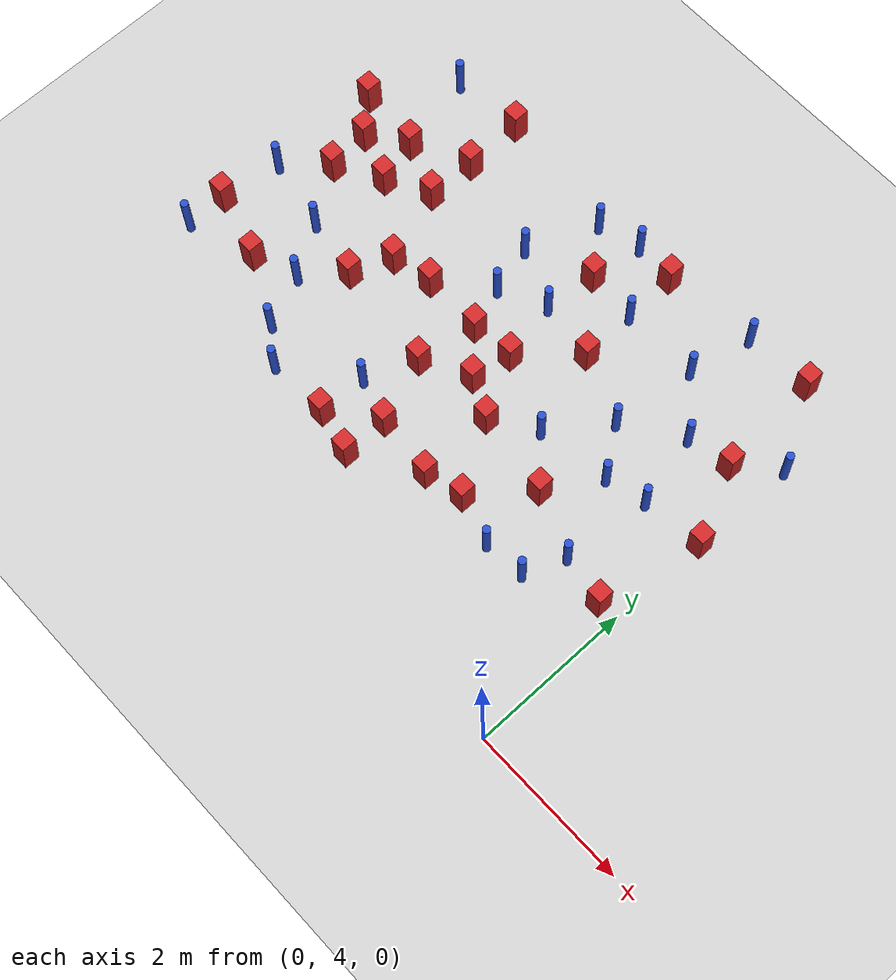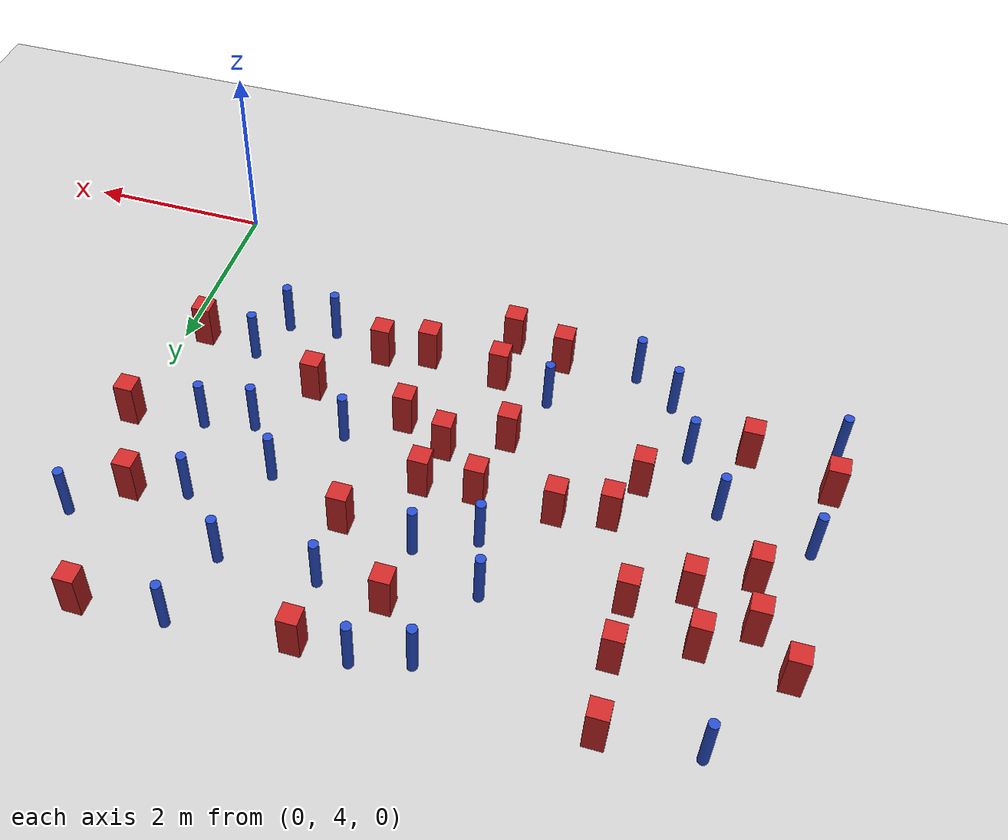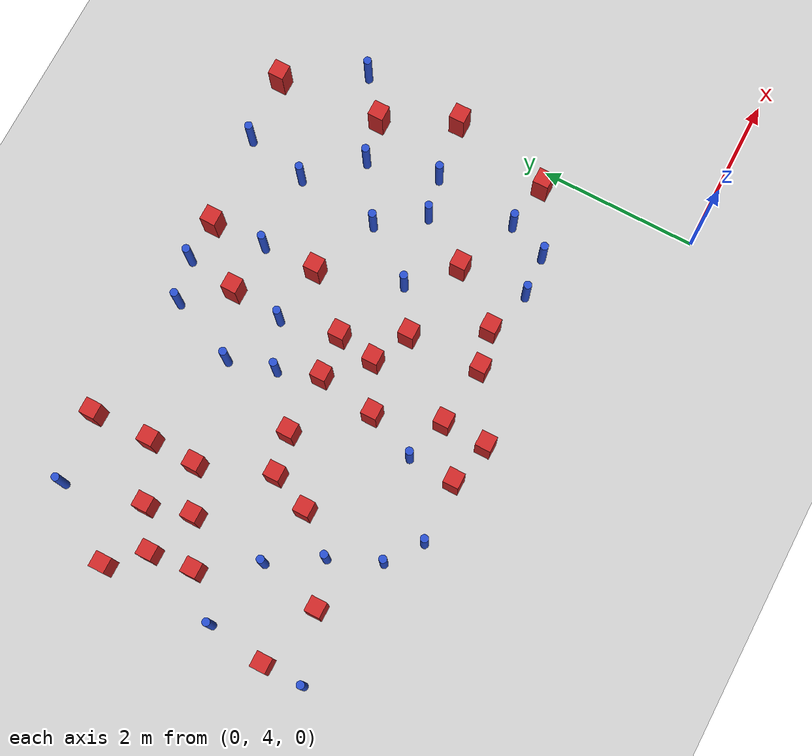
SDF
<sdf version="1.6">
 <world name="default">
  <model name="ground_plane">
   <static>1</static>
   <link name="link">
    <collision name="collision">
     <geometry><plane><normal>0 0 1</normal><size>100 100</size></plane></geometry>
     <surface><friction><ode><mu>100</mu><mu2>50</mu2></ode></friction></surface>
    </collision>
    <visual name="visual">
     <cast_shadows>0</cast_shadows>
     <geometry><plane><normal>0 0 1</normal><size>100 100</size></plane></geometry>
     <material>
      <ambient>1.0 1.0 1.0 1.0</ambient>
      <diffuse>0.8 0.8 0.8 1.0</diffuse>
      <specular>0.01 0.01 0.01 1.000000</specular>
     </material>
    </visual>
   </link>
  </model>
  <model name="pole_obstacle1">
   <static>true</static>
   <pose>-2.13433146588 6.8682397058 -9.47619616065e-06 5.49618799738e-07 2.3631041406e-07 -1.55090534801e-07</pose>
   <link name="link">
    <pose>0 0 0.3 0 -0 0</pose>
    <inertial>
     <mass>1</mass>
     <inertia><ixx>0.145833</ixx><ixy>0</ixy><ixz>0</ixz><iyy>0.145833</iyy><iyz>0</iyz><izz>0.125</izz></inertia>
    </inertial>
    <collision name="collision">
     <geometry><cylinder><radius>0.05</radius><length>.6</length></cylinder></geometry>
    </collision>
    <visual name="visual">
     <geometry><cylinder><radius>0.05</radius><length>.6</length></cylinder></geometry>
     <material>
      <script><name>Gazebo/Blue</name><uri>file://media/materials/scripts/gazebo.material</uri></script>
     </material>
    </visual>
   </link>
  </model>
  <model name="pole_obstacle4">
   <static>true</static>
   <pose>-3.21196088458 8.00425700751 -9.47619616065e-06 5.49618799737e-07 2.3631041406e-07 -1.55090534799e-07</pose>
   <link name="link">
    <pose>0 0 0.3 0 -0 0</pose>
    <inertial>
     <mass>1</mass>
     <inertia><ixx>0.145833</ixx><ixy>0</ixy><ixz>0</ixz><iyy>0.145833</iyy><iyz>0</iyz><izz>0.125</izz></inertia>
    </inertial>
    <collision name="collision">
     <geometry><cylinder><radius>0.05</radius><length>.6</length></cylinder></geometry>
    </collision>
    <visual name="visual">
     <geometry><cylinder><radius>0.05</radius><length>.6</length></cylinder></geometry>
     <material>
      <script><name>Gazebo/Blue</name><uri>file://media/materials/scripts/gazebo.material</uri></script>
     </material>
    </visual>
   </link>
  </model>
  <model name="square_post_obstacle3">
   <static>true</static>
   <pose>0.0373794791806 7.22785850671 -6.11067671241e-07 -5.50515727128e-06 -8.79689657224e-07 2.37013304536e-05</pose>
   <link name="link">
    <pose>0 0 0.25 0 -0 0</pose>
    <inertial>
     <mass>100</mass>
     <inertia>
      <ixx>0.166667</ixx>
      <ixy>0</ixy>
      <ixz>0</ixz>
      <iyy>0.166667</iyy>
      <iyz>0</iyz>
      <izz>0.166667</izz>
     </inertia>
    </inertial>
    <collision name="collision"><geometry><box><size>.2 .2 .5</size></box></geometry></collision>
    <visual name="visual">
     <geometry><box><size>.2 .2 .5</size></box></geometry>
     <material>
      <script><name>Gazebo/Red</name><uri>file://media/materials/scripts/gazebo.material</uri></script>
     </material>
    </visual>
   </link>
  </model>
  <model name="pole_obstacle9">
   <static>true</static>
   <pose>-1.62684005314 7.56220310109 -9.47619616065e-06 5.49618799737e-07 2.36310414061e-07 -1.550905348e-07</pose>
   <link name="link">
    <pose>0 0 0.3 0 -0 0</pose>
    <inertial>
     <mass>1</mass>
     <inertia><ixx>0.145833</ixx><ixy>0</ixy><ixz>0</ixz><iyy>0.145833</iyy><iyz>0</iyz><izz>0.125</izz></inertia>
    </inertial>
    <collision name="collision">
     <geometry><cylinder><radius>0.05</radius><length>.6</length></cylinder></geometry>
    </collision>
    <visual name="visual">
     <geometry><cylinder><radius>0.05</radius><length>.6</length></cylinder></geometry>
     <material>
      <script><name>Gazebo/Blue</name><uri>file://media/materials/scripts/gazebo.material</uri></script>
     </material>
    </visual>
   </link>
  </model>
  <model name="square_post_obstacle8">
   <static>true</static>
   <pose>-5.1087759929 6.61862478687 -6.11067671241e-07 -5.50515727128e-06 -8.79689657224e-07 2.37013304536e-05</pose>
   <link name="link">
    <pose>0 0 0.25 0 -0 0</pose>
    <inertial>
     <mass>100</mass>
     <inertia>
      <ixx>0.166667</ixx>
      <ixy>0</ixy>
      <ixz>0</ixz>
      <iyy>0.166667</iyy>
      <iyz>0</iyz>
      <izz>0.166667</izz>
     </inertia>
    </inertial>
    <collision name="collision"><geometry><box><size>.2 .2 .5</size></box></geometry></collision>
    <visual name="visual">
     <geometry><box><size>.2 .2 .5</size></box></geometry>
     <material>
      <script><name>Gazebo/Red</name><uri>file://media/materials/scripts/gazebo.material</uri></script>
     </material>
    </visual>
   </link>
  </model>
  <model name="pole_obstacle28">
   <static>true</static>
   <pose>-1.50425184578 8.63080577014 -9.47619616065e-06 5.49618799737e-07 2.36310414046e-07 -1.55090534809e-07</pose>
   <link name="link">
    <pose>0 0 0.3 0 -0 0</pose>
    <inertial>
     <mass>1</mass>
     <inertia><ixx>0.145833</ixx><ixy>0</ixy><ixz>0</ixz><iyy>0.145833</iyy><iyz>0</iyz><izz>0.125</izz></inertia>
    </inertial>
    <collision name="collision">
     <geometry><cylinder><radius>0.05</radius><length>.6</length></cylinder></geometry>
    </collision>
    <visual name="visual">
     <geometry><cylinder><radius>0.05</radius><length>.6</length></cylinder></geometry>
     <material>
      <script><name>Gazebo/Blue</name><uri>file://media/materials/scripts/gazebo.material</uri></script>
     </material>
    </visual>
   </link>
  </model>
  <model name="pole_obstacle30">
   <static>true</static>
   <pose>-1.22058557378 7.00821244844 -9.47619616065e-06 5.49618799737e-07 2.36310414061e-07 -1.550905348e-07</pose>
   <link name="link">
    <pose>0 0 0.3 0 -0 0</pose>
    <inertial>
     <mass>1</mass>
     <inertia><ixx>0.145833</ixx><ixy>0</ixy><ixz>0</ixz><iyy>0.145833</iyy><iyz>0</iyz><izz>0.125</izz></inertia>
    </inertial>
    <collision name="collision">
     <geometry><cylinder><radius>0.05</radius><length>.6</length></cylinder></geometry>
    </collision>
    <visual name="visual">
     <geometry><cylinder><radius>0.05</radius><length>.6</length></cylinder></geometry>
     <material>
      <script><name>Gazebo/Blue</name><uri>file://media/materials/scripts/gazebo.material</uri></script>
     </material>
    </visual>
   </link>
  </model>
  <model name="square_post_obstacle25">
   <static>true</static>
   <pose>-3.05869939049 7.25814475524 -6.11067671241e-07 -5.50515727128e-06 -8.79689657224e-07 2.37013304536e-05</pose>
   <link name="link">
    <pose>0 0 0.25 0 -0 0</pose>
    <inertial>
     <mass>100</mass>
     <inertia>
      <ixx>0.166667</ixx>
      <ixy>0</ixy>
      <ixz>0</ixz>
      <iyy>0.166667</iyy>
      <iyz>0</iyz>
      <izz>0.166667</izz>
     </inertia>
    </inertial>
    <collision name="collision"><geometry><box><size>.2 .2 .5</size></box></geometry></collision>
    <visual name="visual">
     <geometry><box><size>.2 .2 .5</size></box></geometry>
     <material>
      <script><name>Gazebo/Red</name><uri>file://media/materials/scripts/gazebo.material</uri></script>
     </material>
    </visual>
   </link>
  </model>
  <model name="square_post_obstacle31">
   <static>true</static>
   <pose>-2.15792530512 5.68523999802 -6.11067671241e-07 -5.50515727128e-06 -8.79689657224e-07 2.37013304536e-05</pose>
   <link name="link">
    <pose>0 0 0.25 0 -0 0</pose>
    <inertial>
     <mass>100</mass>
     <inertia>
      <ixx>0.166667</ixx>
      <ixy>0</ixy>
      <ixz>0</ixz>
      <iyy>0.166667</iyy>
      <iyz>0</iyz>
      <izz>0.166667</izz>
     </inertia>
    </inertial>
    <collision name="collision"><geometry><box><size>.2 .2 .5</size></box></geometry></collision>
    <visual name="visual">
     <geometry><box><size>.2 .2 .5</size></box></geometry>
     <material>
      <script><name>Gazebo/Red</name><uri>file://media/materials/scripts/gazebo.material</uri></script>
     </material>
    </visual>
   </link>
  </model>
  <model name="pole_obstacle45">
   <static>true</static>
   <pose>-3.58425441482 9.18958862862 -9.47619616065e-06 5.49618799738e-07 2.36310414059e-07 -1.55090534802e-07</pose>
   <link name="link">
    <pose>0 0 0.3 0 -0 0</pose>
    <inertial>
     <mass>1</mass>
     <inertia><ixx>0.145833</ixx><ixy>0</ixy><ixz>0</ixz><iyy>0.145833</iyy><iyz>0</iyz><izz>0.125</izz></inertia>
    </inertial>
    <collision name="collision">
     <geometry><cylinder><radius>0.05</radius><length>.6</length></cylinder></geometry>
    </collision>
    <visual name="visual">
     <geometry><cylinder><radius>0.05</radius><length>.6</length></cylinder></geometry>
     <material>
      <script><name>Gazebo/Blue</name><uri>file://media/materials/scripts/gazebo.material</uri></script>
     </material>
    </visual>
   </link>
  </model>
  <model name="pole_obstacle47">
   <static>true</static>
   <pose>-1.03991508712 5.5405683807 -9.47619616065e-06 5.49618799737e-07 2.36310414062e-07 -1.55090534799e-07</pose>
   <link name="link">
    <pose>0 0 0.3 0 -0 0</pose>
    <inertial>
     <mass>1</mass>
     <inertia><ixx>0.145833</ixx><ixy>0</ixy><ixz>0</ixz><iyy>0.145833</iyy><iyz>0</iyz><izz>0.125</izz></inertia>
    </inertial>
    <collision name="collision">
     <geometry><cylinder><radius>0.05</radius><length>.6</length></cylinder></geometry>
    </collision>
    <visual name="visual">
     <geometry><cylinder><radius>0.05</radius><length>.6</length></cylinder></geometry>
     <material>
      <script><name>Gazebo/Blue</name><uri>file://media/materials/scripts/gazebo.material</uri></script>
     </material>
    </visual>
   </link>
  </model>
  <model name="square_post_obstacle38">
   <static>true</static>
   <pose>-6.75622918908 8.38984562279 -6.11067671241e-07 -5.50515727128e-06 -8.79689657224e-07 2.37013304536e-05</pose>
   <link name="link">
    <pose>0 0 0.25 0 -0 0</pose>
    <inertial>
     <mass>100</mass>
     <inertia>
      <ixx>0.166667</ixx>
      <ixy>0</ixy>
      <ixz>0</ixz>
      <iyy>0.166667</iyy>
      <iyz>0</iyz>
      <izz>0.166667</izz>
     </inertia>
    </inertial>
    <collision name="collision"><geometry><box><size>.2 .2 .5</size></box></geometry></collision>
    <visual name="visual">
     <geometry><box><size>.2 .2 .5</size></box></geometry>
     <material>
      <script><name>Gazebo/Red</name><uri>file://media/materials/scripts/gazebo.material</uri></script>
     </material>
    </visual>
   </link>
  </model>
  <model name="pole_obstacle52">
   <static>true</static>
   <pose>-5.49921110554 6.13548328127 -9.47619616065e-06 5.49618799737e-07 2.36310414037e-07 -1.55090534814e-07</pose>
   <link name="link">
    <pose>0 0 0.3 0 -0 0</pose>
    <inertial>
     <mass>1</mass>
     <inertia><ixx>0.145833</ixx><ixy>0</ixy><ixz>0</ixz><iyy>0.145833</iyy><iyz>0</iyz><izz>0.125</izz></inertia>
    </inertial>
    <collision name="collision">
     <geometry><cylinder><radius>0.05</radius><length>.6</length></cylinder></geometry>
    </collision>
    <visual name="visual">
     <geometry><cylinder><radius>0.05</radius><length>.6</length></cylinder></geometry>
     <material>
      <script><name>Gazebo/Blue</name><uri>file://media/materials/scripts/gazebo.material</uri></script>
     </material>
    </visual>
   </link>
  </model>
  <model name="square_post_obstacle40">
   <static>true</static>
   <pose>-5.22100148265 8.64073795015 -6.11067671241e-07 -5.50515727128e-06 -8.79689657224e-07 2.37013304536e-05</pose>
   <link name="link">
    <pose>0 0 0.25 0 -0 0</pose>
    <inertial>
     <mass>100</mass>
     <inertia>
      <ixx>0.166667</ixx>
      <ixy>0</ixy>
      <ixz>0</ixz>
      <iyy>0.166667</iyy>
      <iyz>0</iyz>
      <izz>0.166667</izz>
     </inertia>
    </inertial>
    <collision name="collision"><geometry><box><size>.2 .2 .5</size></box></geometry></collision>
    <visual name="visual">
     <geometry><box><size>.2 .2 .5</size></box></geometry>
     <material>
      <script><name>Gazebo/Red</name><uri>file://media/materials/scripts/gazebo.material</uri></script>
     </material>
    </visual>
   </link>
  </model>
  <model name="square_post_obstacle57">
   <static>true</static>
   <pose>-6.38571675493 7.98273906625 -6.11067671241e-07 -5.50515727128e-06 -8.79689657224e-07 2.37013304536e-05</pose>
   <link name="link">
    <pose>0 0 0.25 0 -0 0</pose>
    <inertial>
     <mass>100</mass>
     <inertia>
      <ixx>0.166667</ixx>
      <ixy>0</ixy>
      <ixz>0</ixz>
      <iyy>0.166667</iyy>
      <iyz>0</iyz>
      <izz>0.166667</izz>
     </inertia>
    </inertial>
    <collision name="collision"><geometry><box><size>.2 .2 .5</size></box></geometry></collision>
    <visual name="visual">
     <geometry><box><size>.2 .2 .5</size></box></geometry>
     <material>
      <script><name>Gazebo/Red</name><uri>file://media/materials/scripts/gazebo.material</uri></script>
     </material>
    </visual>
   </link>
  </model>
  <model name="square_post_obstacle60">
   <static>true</static>
   <pose>-4.0104236069 5.22577910065 -6.11067671241e-07 -5.50515727128e-06 -8.79689657224e-07 2.37013304536e-05</pose>
   <link name="link">
    <pose>0 0 0.25 0 -0 0</pose>
    <inertial>
     <mass>100</mass>
     <inertia>
      <ixx>0.166667</ixx>
      <ixy>0</ixy>
      <ixz>0</ixz>
      <iyy>0.166667</iyy>
      <iyz>0</iyz>
      <izz>0.166667</izz>
     </inertia>
    </inertial>
    <collision name="collision"><geometry><box><size>.2 .2 .5</size></box></geometry></collision>
    <visual name="visual">
     <geometry><box><size>.2 .2 .5</size></box></geometry>
     <material>
      <script><name>Gazebo/Red</name><uri>file://media/materials/scripts/gazebo.material</uri></script>
     </material>
    </visual>
   </link>
  </model>
  <model name="pole_obstacle77">
   <static>true</static>
   <pose>-1.564379954 5.50133856745 -9.47619616065e-06 5.49618799737e-07 2.36310414061e-07 -1.550905348e-07</pose>
   <link name="link">
    <pose>0 0 0.3 0 -0 0</pose>
    <inertial>
     <mass>1</mass>
     <inertia><ixx>0.145833</ixx><ixy>0</ixy><ixz>0</ixz><iyy>0.145833</iyy><iyz>0</iyz><izz>0.125</izz></inertia>
    </inertial>
    <collision name="collision">
     <geometry><cylinder><radius>0.05</radius><length>.6</length></cylinder></geometry>
    </collision>
    <visual name="visual">
     <geometry><cylinder><radius>0.05</radius><length>.6</length></cylinder></geometry>
     <material>
      <script><name>Gazebo/Blue</name><uri>file://media/materials/scripts/gazebo.material</uri></script>
     </material>
    </visual>
   </link>
  </model>
  <model name="square_post_obstacle72">
   <static>true</static>
   <pose>-0.391083807644 8.13131009959 -6.11067671241e-07 -5.50515727128e-06 -8.79689657224e-07 2.37013304536e-05</pose>
   <link name="link">
    <pose>0 0 0.25 0 -0 0</pose>
    <inertial>
     <mass>100</mass>
     <inertia>
      <ixx>0.166667</ixx>
      <ixy>0</ixy>
      <ixz>0</ixz>
      <iyy>0.166667</iyy>
      <iyz>0</iyz>
      <izz>0.166667</izz>
     </inertia>
    </inertial>
    <collision name="collision"><geometry><box><size>.2 .2 .5</size></box></geometry></collision>
    <visual name="visual">
     <geometry><box><size>.2 .2 .5</size></box></geometry>
     <material>
      <script><name>Gazebo/Red</name><uri>file://media/materials/scripts/gazebo.material</uri></script>
     </material>
    </visual>
   </link>
  </model>
  <model name="pole_obstacle83">
   <static>true</static>
   <pose>-0.710696135449 7.12560566712 -9.47619616065e-06 5.49618799737e-07 2.36310414065e-07 -1.55090534796e-07</pose>
   <link name="link">
    <pose>0 0 0.3 0 -0 0</pose>
    <inertial>
     <mass>1</mass>
     <inertia><ixx>0.145833</ixx><ixy>0</ixy><ixz>0</ixz><iyy>0.145833</iyy><iyz>0</iyz><izz>0.125</izz></inertia>
    </inertial>
    <collision name="collision">
     <geometry><cylinder><radius>0.05</radius><length>.6</length></cylinder></geometry>
    </collision>
    <visual name="visual">
     <geometry><cylinder><radius>0.05</radius><length>.6</length></cylinder></geometry>
     <material>
      <script><name>Gazebo/Blue</name><uri>file://media/materials/scripts/gazebo.material</uri></script>
     </material>
    </visual>
   </link>
  </model>
  <model name="square_post_obstacle81">
   <static>true</static>
   <pose>-0.239916706573 5.94124531862 -6.11067671241e-07 -5.50515727128e-06 -8.79689657224e-07 2.37013304536e-05</pose>
   <link name="link">
    <pose>0 0 0.25 0 -0 0</pose>
    <inertial>
     <mass>100</mass>
     <inertia>
      <ixx>0.166667</ixx>
      <ixy>0</ixy>
      <ixz>0</ixz>
      <iyy>0.166667</iyy>
      <iyz>0</iyz>
      <izz>0.166667</izz>
     </inertia>
    </inertial>
    <collision name="collision"><geometry><box><size>.2 .2 .5</size></box></geometry></collision>
    <visual name="visual">
     <geometry><box><size>.2 .2 .5</size></box></geometry>
     <material>
      <script><name>Gazebo/Red</name><uri>file://media/materials/scripts/gazebo.material</uri></script>
     </material>
    </visual>
   </link>
  </model>
  <model name="square_post_obstacle82">
   <static>true</static>
   <pose>-2.46903252092 7.90923069919 -6.11067671241e-07 -5.50515727128e-06 -8.79689657224e-07 2.37013304536e-05</pose>
   <link name="link">
    <pose>0 0 0.25 0 -0 0</pose>
    <inertial>
     <mass>100</mass>
     <inertia>
      <ixx>0.166667</ixx>
      <ixy>0</ixy>
      <ixz>0</ixz>
      <iyy>0.166667</iyy>
      <iyz>0</iyz>
      <izz>0.166667</izz>
     </inertia>
    </inertial>
    <collision name="collision"><geometry><box><size>.2 .2 .5</size></box></geometry></collision>
    <visual name="visual">
     <geometry><box><size>.2 .2 .5</size></box></geometry>
     <material>
      <script><name>Gazebo/Red</name><uri>file://media/materials/scripts/gazebo.material</uri></script>
     </material>
    </visual>
   </link>
  </model>
  <model name="square_post_obstacle84">
   <static>true</static>
   <pose>-3.73147931905 6.45672722663 -6.11067671241e-07 -5.50515727128e-06 -8.79689657224e-07 2.37013304536e-05</pose>
   <link name="link">
    <pose>0 0 0.25 0 -0 0</pose>
    <inertial>
     <mass>100</mass>
     <inertia>
      <ixx>0.166667</ixx>
      <ixy>0</ixy>
      <ixz>0</ixz>
      <iyy>0.166667</iyy>
      <iyz>0</iyz>
      <izz>0.166667</izz>
     </inertia>
    </inertial>
    <collision name="collision"><geometry><box><size>.2 .2 .5</size></box></geometry></collision>
    <visual name="visual">
     <geometry><box><size>.2 .2 .5</size></box></geometry>
     <material>
      <script><name>Gazebo/Red</name><uri>file://media/materials/scripts/gazebo.material</uri></script>
     </material>
    </visual>
   </link>
  </model>
  <model name="square_post_obstacle85">
   <static>true</static>
   <pose>-3.43036360824 5.65740185854 -6.11067671241e-07 -5.50515727128e-06 -8.79689657224e-07 2.37013304536e-05</pose>
   <link name="link">
    <pose>0 0 0.25 0 -0 0</pose>
    <inertial>
     <mass>100</mass>
     <inertia>
      <ixx>0.166667</ixx>
      <ixy>0</ixy>
      <ixz>0</ixz>
      <iyy>0.166667</iyy>
      <iyz>0</iyz>
      <izz>0.166667</izz>
     </inertia>
    </inertial>
    <collision name="collision"><geometry><box><size>.2 .2 .5</size></box></geometry></collision>
    <visual name="visual">
     <geometry><box><size>.2 .2 .5</size></box></geometry>
     <material>
      <script><name>Gazebo/Red</name><uri>file://media/materials/scripts/gazebo.material</uri></script>
     </material>
    </visual>
   </link>
  </model>
  <model name="pole_obstacle98">
   <static>true</static>
   <pose>-3.94559346569 8.32662806653 -9.4761961606e-06 5.49618799729e-07 2.36310414e-07 -1.55090534824e-07</pose>
   <link name="link">
    <pose>0 0 0.3 0 -0 0</pose>
    <inertial>
     <mass>1</mass>
     <inertia><ixx>0.145833</ixx><ixy>0</ixy><ixz>0</ixz><iyy>0.145833</iyy><iyz>0</iyz><izz>0.125</izz></inertia>
    </inertial>
    <collision name="collision">
     <geometry><cylinder><radius>0.05</radius><length>.6</length></cylinder></geometry>
    </collision>
    <visual name="visual">
     <geometry><cylinder><radius>0.05</radius><length>.6</length></cylinder></geometry>
     <material>
      <script><name>Gazebo/Blue</name><uri>file://media/materials/scripts/gazebo.material</uri></script>
     </material>
    </visual>
   </link>
  </model>
  <model name="square_post_obstacle92">
   <static>true</static>
   <pose>-4.38413380079 7.22898894518 -6.11067671241e-07 -5.50515727128e-06 -8.79689657224e-07 2.37013304536e-05</pose>
   <link name="link">
    <pose>0 0 0.25 0 -0 0</pose>
    <inertial>
     <mass>100</mass>
     <inertia>
      <ixx>0.166667</ixx>
      <ixy>0</ixy>
      <ixz>0</ixz>
      <iyy>0.166667</iyy>
      <iyz>0</iyz>
      <izz>0.166667</izz>
     </inertia>
    </inertial>
    <collision name="collision"><geometry><box><size>.2 .2 .5</size></box></geometry></collision>
    <visual name="visual">
     <geometry><box><size>.2 .2 .5</size></box></geometry>
     <material>
      <script><name>Gazebo/Red</name><uri>file://media/materials/scripts/gazebo.material</uri></script>
     </material>
    </visual>
   </link>
  </model>
  <model name="square_post_obstacle93">
   <static>true</static>
   <pose>-6.06385527448 5.94829806974 -6.11067671241e-07 -5.50515727128e-06 -8.79689657224e-07 2.37013304536e-05</pose>
   <link name="link">
    <pose>0 0 0.25 0 -0 0</pose>
    <inertial>
     <mass>100</mass>
     <inertia>
      <ixx>0.166667</ixx>
      <ixy>0</ixy>
      <ixz>0</ixz>
      <iyy>0.166667</iyy>
      <iyz>0</iyz>
      <izz>0.166667</izz>
     </inertia>
    </inertial>
    <collision name="collision"><geometry><box><size>.2 .2 .5</size></box></geometry></collision>
    <visual name="visual">
     <geometry><box><size>.2 .2 .5</size></box></geometry>
     <material>
      <script><name>Gazebo/Red</name><uri>file://media/materials/scripts/gazebo.material</uri></script>
     </material>
    </visual>
   </link>
  </model>
  <model name="square_post_obstacle105">
   <static>true</static>
   <pose>-3.45084636928 5.08992485805 -6.11067671241e-07 -5.50515727128e-06 -8.79689657224e-07 2.37013304536e-05</pose>
   <link name="link">
    <pose>0 0 0.25 0 -0 0</pose>
    <inertial>
     <mass>100</mass>
     <inertia>
      <ixx>0.166667</ixx>
      <ixy>0</ixy>
      <ixz>0</ixz>
      <iyy>0.166667</iyy>
      <iyz>0</iyz>
      <izz>0.166667</izz>
     </inertia>
    </inertial>
    <collision name="collision"><geometry><box><size>.2 .2 .5</size></box></geometry></collision>
    <visual name="visual">
     <geometry><box><size>.2 .2 .5</size></box></geometry>
     <material>
      <script><name>Gazebo/Red</name><uri>file://media/materials/scripts/gazebo.material</uri></script>
     </material>
    </visual>
   </link>
  </model>
  <model name="square_post_obstacle111">
   <static>true</static>
   <pose>-5.24697869803 9.39742564192 -6.11067671241e-07 -5.50515727128e-06 -8.79689657224e-07 2.37013304536e-05</pose>
   <link name="link">
    <pose>0 0 0.25 0 -0 0</pose>
    <inertial>
     <mass>100</mass>
     <inertia>
      <ixx>0.166667</ixx>
      <ixy>0</ixy>
      <ixz>0</ixz>
      <iyy>0.166667</iyy>
      <iyz>0</iyz>
      <izz>0.166667</izz>
     </inertia>
    </inertial>
    <collision name="collision"><geometry><box><size>.2 .2 .5</size></box></geometry></collision>
    <visual name="visual">
     <geometry><box><size>.2 .2 .5</size></box></geometry>
     <material>
      <script><name>Gazebo/Red</name><uri>file://media/materials/scripts/gazebo.material</uri></script>
     </material>
    </visual>
   </link>
  </model>
  <model name="square_post_obstacle113">
   <static>true</static>
   <pose>-2.51736904732 9.29865078831 -6.11067671241e-07 -5.50515727128e-06 -8.79689657224e-07 2.37013304536e-05</pose>
   <link name="link">
    <pose>0 0 0.25 0 -0 0</pose>
    <inertial>
     <mass>100</mass>
     <inertia>
      <ixx>0.166667</ixx>
      <ixy>0</ixy>
      <ixz>0</ixz>
      <iyy>0.166667</iyy>
      <iyz>0</iyz>
      <izz>0.166667</izz>
     </inertia>
    </inertial>
    <collision name="collision"><geometry><box><size>.2 .2 .5</size></box></geometry></collision>
    <visual name="visual">
     <geometry><box><size>.2 .2 .5</size></box></geometry>
     <material>
      <script><name>Gazebo/Red</name><uri>file://media/materials/scripts/gazebo.material</uri></script>
     </material>
    </visual>
   </link>
  </model>
  <model name="square_post_obstacle114">
   <static>true</static>
   <pose>-5.92031435146 8.30311589129 -6.11067671241e-07 -5.50515727128e-06 -8.79689657224e-07 2.37013304536e-05</pose>
   <link name="link">
    <pose>0 0 0.25 0 -0 0</pose>
    <inertial>
     <mass>100</mass>
     <inertia>
      <ixx>0.166667</ixx>
      <ixy>0</ixy>
      <ixz>0</ixz>
      <iyy>0.166667</iyy>
      <iyz>0</iyz>
      <izz>0.166667</izz>
     </inertia>
    </inertial>
    <collision name="collision"><geometry><box><size>.2 .2 .5</size></box></geometry></collision>
    <visual name="visual">
     <geometry><box><size>.2 .2 .5</size></box></geometry>
     <material>
      <script><name>Gazebo/Red</name><uri>file://media/materials/scripts/gazebo.material</uri></script>
     </material>
    </visual>
   </link>
  </model>
  <model name="square_post_obstacle117">
   <static>true</static>
   <pose>-2.64665574709 5.57249710618 -6.11067671241e-07 -5.50515727128e-06 -8.79689657224e-07 2.37013304536e-05</pose>
   <link name="link">
    <pose>0 0 0.25 0 -0 0</pose>
    <inertial>
     <mass>100</mass>
     <inertia>
      <ixx>0.166667</ixx>
      <ixy>0</ixy>
      <ixz>0</ixz>
      <iyy>0.166667</iyy>
      <iyz>0</iyz>
      <izz>0.166667</izz>
     </inertia>
    </inertial>
    <collision name="collision"><geometry><box><size>.2 .2 .5</size></box></geometry></collision>
    <visual name="visual">
     <geometry><box><size>.2 .2 .5</size></box></geometry>
     <material>
      <script><name>Gazebo/Red</name><uri>file://media/materials/scripts/gazebo.material</uri></script>
     </material>
    </visual>
   </link>
  </model>
  <model name="pole_obstacle118">
   <static>true</static>
   <pose>-3.98733534103 5.82455617297 -9.47619616065e-06 5.49618799738e-07 2.36310414056e-07 -1.55090534803e-07</pose>
   <link name="link">
    <pose>0 0 0.3 0 -0 0</pose>
    <inertial>
     <mass>1</mass>
     <inertia><ixx>0.145833</ixx><ixy>0</ixy><ixz>0</ixz><iyy>0.145833</iyy><iyz>0</iyz><izz>0.125</izz></inertia>
    </inertial>
    <collision name="collision">
     <geometry><cylinder><radius>0.05</radius><length>.6</length></cylinder></geometry>
    </collision>
    <visual name="visual">
     <geometry><cylinder><radius>0.05</radius><length>.6</length></cylinder></geometry>
     <material>
      <script><name>Gazebo/Blue</name><uri>file://media/materials/scripts/gazebo.material</uri></script>
     </material>
    </visual>
   </link>
  </model>
  <model name="pole_obstacle121">
   <static>true</static>
   <pose>-1.32988299159 9.4243934041 -9.47619616065e-06 5.49618799737e-07 2.36310414046e-07 -1.55090534809e-07</pose>
   <link name="link">
    <pose>0 0 0.3 0 -0 0</pose>
    <inertial>
     <mass>1</mass>
     <inertia><ixx>0.145833</ixx><ixy>0</ixy><ixz>0</ixz><iyy>0.145833</iyy><iyz>0</iyz><izz>0.125</izz></inertia>
    </inertial>
    <collision name="collision">
     <geometry><cylinder><radius>0.05</radius><length>.6</length></cylinder></geometry>
    </collision>
    <visual name="visual">
     <geometry><cylinder><radius>0.05</radius><length>.6</length></cylinder></geometry>
     <material>
      <script><name>Gazebo/Blue</name><uri>file://media/materials/scripts/gazebo.material</uri></script>
     </material>
    </visual>
   </link>
  </model>
  <model name="pole_obstacle133">
   <static>true</static>
   <pose>-2.4831752939 8.61446373028 -9.4761961606e-06 5.49618799729e-07 2.36310414e-07 -1.55090534824e-07</pose>
   <link name="link">
    <pose>0 0 0.3 0 -0 0</pose>
    <inertial>
     <mass>1</mass>
     <inertia><ixx>0.145833</ixx><ixy>0</ixy><ixz>0</ixz><iyy>0.145833</iyy><iyz>0</iyz><izz>0.125</izz></inertia>
    </inertial>
    <collision name="collision">
     <geometry><cylinder><radius>0.05</radius><length>.6</length></cylinder></geometry>
    </collision>
    <visual name="visual">
     <geometry><cylinder><radius>0.05</radius><length>.6</length></cylinder></geometry>
     <material>
      <script><name>Gazebo/Blue</name><uri>file://media/materials/scripts/gazebo.material</uri></script>
     </material>
    </visual>
   </link>
  </model>
  <model name="pole_obstacle137">
   <static>true</static>
   <pose>-6.79121560656 6.95761466556 -9.47619616065e-06 5.49618799737e-07 2.36310414037e-07 -1.55090534814e-07</pose>
   <link name="link">
    <pose>0 0 0.3 0 -0 0</pose>
    <inertial>
     <mass>1</mass>
     <inertia><ixx>0.145833</ixx><ixy>0</ixy><ixz>0</ixz><iyy>0.145833</iyy><iyz>0</iyz><izz>0.125</izz></inertia>
    </inertial>
    <collision name="collision">
     <geometry><cylinder><radius>0.05</radius><length>.6</length></cylinder></geometry>
    </collision>
    <visual name="visual">
     <geometry><cylinder><radius>0.05</radius><length>.6</length></cylinder></geometry>
     <material>
      <script><name>Gazebo/Blue</name><uri>file://media/materials/scripts/gazebo.material</uri></script>
     </material>
    </visual>
   </link>
  </model>
  <model name="pole_obstacle144">
   <static>true</static>
   <pose>-3.786608386 7.73552938674 -9.4761961606e-06 5.49618799729e-07 2.36310414006e-07 -1.55090534822e-07</pose>
   <link name="link">
    <pose>0 0 0.3 0 -0 0</pose>
    <inertial>
     <mass>1</mass>
     <inertia><ixx>0.145833</ixx><ixy>0</ixy><ixz>0</ixz><iyy>0.145833</iyy><iyz>0</iyz><izz>0.125</izz></inertia>
    </inertial>
    <collision name="collision">
     <geometry><cylinder><radius>0.05</radius><length>.6</length></cylinder></geometry>
    </collision>
    <visual name="visual">
     <geometry><cylinder><radius>0.05</radius><length>.6</length></cylinder></geometry>
     <material>
      <script><name>Gazebo/Blue</name><uri>file://media/materials/scripts/gazebo.material</uri></script>
     </material>
    </visual>
   </link>
  </model>
  <model name="square_post_obstacle141">
   <static>true</static>
   <pose>-5.76830538051 7.74743735246 -6.11067671241e-07 -5.50515727128e-06 -8.79689657224e-07 2.37013304536e-05</pose>
   <link name="link">
    <pose>0 0 0.25 0 -0 0</pose>
    <inertial>
     <mass>100</mass>
     <inertia>
      <ixx>0.166667</ixx>
      <ixy>0</ixy>
      <ixz>0</ixz>
      <iyy>0.166667</iyy>
      <iyz>0</iyz>
      <izz>0.166667</izz>
     </inertia>
    </inertial>
    <collision name="collision"><geometry><box><size>.2 .2 .5</size></box></geometry></collision>
    <visual name="visual">
     <geometry><box><size>.2 .2 .5</size></box></geometry>
     <material>
      <script><name>Gazebo/Red</name><uri>file://media/materials/scripts/gazebo.material</uri></script>
     </material>
    </visual>
   </link>
  </model>
  <model name="square_post_obstacle142">
   <static>true</static>
   <pose>-1.62575714526 6.36500347344 -6.11067671241e-07 -5.50515727128e-06 -8.79689657224e-07 2.37013304536e-05</pose>
   <link name="link">
    <pose>0 0 0.25 0 -0 0</pose>
    <inertial>
     <mass>100</mass>
     <inertia>
      <ixx>0.166667</ixx>
      <ixy>0</ixy>
      <ixz>0</ixz>
      <iyy>0.166667</iyy>
      <iyz>0</iyz>
      <izz>0.166667</izz>
     </inertia>
    </inertial>
    <collision name="collision"><geometry><box><size>.2 .2 .5</size></box></geometry></collision>
    <visual name="visual">
     <geometry><box><size>.2 .2 .5</size></box></geometry>
     <material>
      <script><name>Gazebo/Red</name><uri>file://media/materials/scripts/gazebo.material</uri></script>
     </material>
    </visual>
   </link>
  </model>
  <model name="square_post_obstacle151">
   <static>true</static>
   <pose>-0.483344792959 9.47304537602 -6.11067671241e-07 -5.50515727128e-06 -8.79689657224e-07 2.37013304536e-05</pose>
   <link name="link">
    <pose>0 0 0.25 0 -0 0</pose>
    <inertial>
     <mass>100</mass>
     <inertia>
      <ixx>0.166667</ixx>
      <ixy>0</ixy>
      <ixz>0</ixz>
      <iyy>0.166667</iyy>
      <iyz>0</iyz>
      <izz>0.166667</izz>
     </inertia>
    </inertial>
    <collision name="collision"><geometry><box><size>.2 .2 .5</size></box></geometry></collision>
    <visual name="visual">
     <geometry><box><size>.2 .2 .5</size></box></geometry>
     <material>
      <script><name>Gazebo/Red</name><uri>file://media/materials/scripts/gazebo.material</uri></script>
     </material>
    </visual>
   </link>
  </model>
  <model name="pole_obstacle155">
   <static>true</static>
   <pose>-3.04273885956 9.33158719115 -9.47619616065e-06 5.49618799738e-07 2.36310414059e-07 -1.55090534802e-07</pose>
   <link name="link">
    <pose>0 0 0.3 0 -0 0</pose>
    <inertial>
     <mass>1</mass>
     <inertia><ixx>0.145833</ixx><ixy>0</ixy><ixz>0</ixz><iyy>0.145833</iyy><iyz>0</iyz><izz>0.125</izz></inertia>
    </inertial>
    <collision name="collision">
     <geometry><cylinder><radius>0.05</radius><length>.6</length></cylinder></geometry>
    </collision>
    <visual name="visual">
     <geometry><cylinder><radius>0.05</radius><length>.6</length></cylinder></geometry>
     <material>
      <script><name>Gazebo/Blue</name><uri>file://media/materials/scripts/gazebo.material</uri></script>
     </material>
    </visual>
   </link>
  </model>
  <model name="pole_obstacle159">
   <static>true</static>
   <pose>-5.23585433737 5.51157134218 -9.47619616065e-06 5.49618799737e-07 2.36310414037e-07 -1.55090534814e-07</pose>
   <link name="link">
    <pose>0 0 0.3 0 -0 0</pose>
    <inertial>
     <mass>1</mass>
     <inertia><ixx>0.145833</ixx><ixy>0</ixy><ixz>0</ixz><iyy>0.145833</iyy><iyz>0</iyz><izz>0.125</izz></inertia>
    </inertial>
    <collision name="collision">
     <geometry><cylinder><radius>0.05</radius><length>.6</length></cylinder></geometry>
    </collision>
    <visual name="visual">
     <geometry><cylinder><radius>0.05</radius><length>.6</length></cylinder></geometry>
     <material>
      <script><name>Gazebo/Blue</name><uri>file://media/materials/scripts/gazebo.material</uri></script>
     </material>
    </visual>
   </link>
  </model>
  <model name="square_post_obstacle163">
   <static>true</static>
   <pose>-2.67037279417 6.52288708931 -6.11067671241e-07 -5.50515727128e-06 -8.79689657224e-07 2.37013304536e-05</pose>
   <link name="link">
    <pose>0 0 0.25 0 -0 0</pose>
    <inertial>
     <mass>100</mass>
     <inertia>
      <ixx>0.166667</ixx>
      <ixy>0</ixy>
      <ixz>0</ixz>
      <iyy>0.166667</iyy>
      <iyz>0</iyz>
      <izz>0.166667</izz>
     </inertia>
    </inertial>
    <collision name="collision"><geometry><box><size>.2 .2 .5</size></box></geometry></collision>
    <visual name="visual">
     <geometry><box><size>.2 .2 .5</size></box></geometry>
     <material>
      <script><name>Gazebo/Red</name><uri>file://media/materials/scripts/gazebo.material</uri></script>
     </material>
    </visual>
   </link>
  </model>
  <model name="square_post_obstacle164">
   <static>true</static>
   <pose>-6.89749212338 6.20061856528 -6.11067671241e-07 -5.50515727128e-06 -8.79689657224e-07 2.37013304536e-05</pose>
   <link name="link">
    <pose>0 0 0.25 0 -0 0</pose>
    <inertial>
     <mass>100</mass>
     <inertia>
      <ixx>0.166667</ixx>
      <ixy>0</ixy>
      <ixz>0</ixz>
      <iyy>0.166667</iyy>
      <iyz>0</iyz>
      <izz>0.166667</izz>
     </inertia>
    </inertial>
    <collision name="collision"><geometry><box><size>.2 .2 .5</size></box></geometry></collision>
    <visual name="visual">
     <geometry><box><size>.2 .2 .5</size></box></geometry>
     <material>
      <script><name>Gazebo/Red</name><uri>file://media/materials/scripts/gazebo.material</uri></script>
     </material>
    </visual>
   </link>
  </model>
  <model name="pole_obstacle168">
   <static>true</static>
   <pose>-6.14455972869 9.31813508872 -9.47619616065e-06 5.49618799737e-07 2.36310414065e-07 -1.55090534796e-07</pose>
   <link name="link">
    <pose>0 0 0.3 0 -0 0</pose>
    <inertial>
     <mass>1</mass>
     <inertia><ixx>0.145833</ixx><ixy>0</ixy><ixz>0</ixz><iyy>0.145833</iyy><iyz>0</iyz><izz>0.125</izz></inertia>
    </inertial>
    <collision name="collision">
     <geometry><cylinder><radius>0.05</radius><length>.6</length></cylinder></geometry>
    </collision>
    <visual name="visual">
     <geometry><cylinder><radius>0.05</radius><length>.6</length></cylinder></geometry>
     <material>
      <script><name>Gazebo/Blue</name><uri>file://media/materials/scripts/gazebo.material</uri></script>
     </material>
    </visual>
   </link>
  </model>
  <model name="square_post_obstacle167">
   <static>true</static>
   <pose>-6.32543691003 7.42896539064 -6.11067671241e-07 -5.50515727128e-06 -8.79689657224e-07 2.37013304536e-05</pose>
   <link name="link">
    <pose>0 0 0.25 0 -0 0</pose>
    <inertial>
     <mass>100</mass>
     <inertia>
      <ixx>0.166667</ixx>
      <ixy>0</ixy>
      <ixz>0</ixz>
      <iyy>0.166667</iyy>
      <iyz>0</iyz>
      <izz>0.166667</izz>
     </inertia>
    </inertial>
    <collision name="collision"><geometry><box><size>.2 .2 .5</size></box></geometry></collision>
    <visual name="visual">
     <geometry><box><size>.2 .2 .5</size></box></geometry>
     <material>
      <script><name>Gazebo/Red</name><uri>file://media/materials/scripts/gazebo.material</uri></script>
     </material>
    </visual>
   </link>
  </model>
  <model name="square_post_obstacle171">
   <static>true</static>
   <pose>-5.23447612923 8.02567937324 -6.11067671241e-07 -5.50515727128e-06 -8.79689657224e-07 2.37013304536e-05</pose>
   <link name="link">
    <pose>0 0 0.25 0 -0 0</pose>
    <inertial>
     <mass>100</mass>
     <inertia>
      <ixx>0.166667</ixx>
      <ixy>0</ixy>
      <ixz>0</ixz>
      <iyy>0.166667</iyy>
      <iyz>0</iyz>
      <izz>0.166667</izz>
     </inertia>
    </inertial>
    <collision name="collision"><geometry><box><size>.2 .2 .5</size></box></geometry></collision>
    <visual name="visual">
     <geometry><box><size>.2 .2 .5</size></box></geometry>
     <material>
      <script><name>Gazebo/Red</name><uri>file://media/materials/scripts/gazebo.material</uri></script>
     </material>
    </visual>
   </link>
  </model>
  <model name="pole_obstacle174">
   <static>true</static>
   <pose>0.0868758291259 8.53530679523 -9.47619616065e-06 5.49618799737e-07 2.36310414032e-07 -1.55090534817e-07</pose>
   <link name="link">
    <pose>0 0 0.3 0 -0 0</pose>
    <inertial>
     <mass>1</mass>
     <inertia><ixx>0.145833</ixx><ixy>0</ixy><ixz>0</ixz><iyy>0.145833</iyy><iyz>0</iyz><izz>0.125</izz></inertia>
    </inertial>
    <collision name="collision">
     <geometry><cylinder><radius>0.05</radius><length>.6</length></cylinder></geometry>
    </collision>
    <visual name="visual">
     <geometry><cylinder><radius>0.05</radius><length>.6</length></cylinder></geometry>
     <material>
      <script><name>Gazebo/Blue</name><uri>file://media/materials/scripts/gazebo.material</uri></script>
     </material>
    </visual>
   </link>
  </model>
  <model name="pole_obstacle177">
   <static>true</static>
   <pose>-0.838689448745 6.0417860201 -9.47619616065e-06 5.49618799737e-07 2.36310414065e-07 -1.55090534796e-07</pose>
   <link name="link">
    <pose>0 0 0.3 0 -0 0</pose>
    <inertial>
     <mass>1</mass>
     <inertia><ixx>0.145833</ixx><ixy>0</ixy><ixz>0</ixz><iyy>0.145833</iyy><iyz>0</iyz><izz>0.125</izz></inertia>
    </inertial>
    <collision name="collision">
     <geometry><cylinder><radius>0.05</radius><length>.6</length></cylinder></geometry>
    </collision>
    <visual name="visual">
     <geometry><cylinder><radius>0.05</radius><length>.6</length></cylinder></geometry>
     <material>
      <script><name>Gazebo/Blue</name><uri>file://media/materials/scripts/gazebo.material</uri></script>
     </material>
    </visual>
   </link>
  </model>
  <model name="pole_obstacle179">
   <static>true</static>
   <pose>-0.931552108911 8.02228039026 -9.47619616065e-06 5.49618799737e-07 2.36310414052e-07 -1.55090534803e-07</pose>
   <link name="link">
    <pose>0 0 0.3 0 -0 0</pose>
    <inertial>
     <mass>1</mass>
     <inertia><ixx>0.145833</ixx><ixy>0</ixy><ixz>0</ixz><iyy>0.145833</iyy><iyz>0</iyz><izz>0.125</izz></inertia>
    </inertial>
    <collision name="collision">
     <geometry><cylinder><radius>0.05</radius><length>.6</length></cylinder></geometry>
    </collision>
    <visual name="visual">
     <geometry><cylinder><radius>0.05</radius><length>.6</length></cylinder></geometry>
     <material>
      <script><name>Gazebo/Blue</name><uri>file://media/materials/scripts/gazebo.material</uri></script>
     </material>
    </visual>
   </link>
  </model>
  <model name="square_post_obstacle185">
   <static>true</static>
   <pose>-3.6018959109 7.20868588485 -6.11067671241e-07 -5.50515727128e-06 -8.79689657224e-07 2.37013304536e-05</pose>
   <link name="link">
    <pose>0 0 0.25 0 -0 0</pose>
    <inertial>
     <mass>100</mass>
     <inertia>
      <ixx>0.166667</ixx>
      <ixy>0</ixy>
      <ixz>0</ixz>
      <iyy>0.166667</iyy>
      <iyz>0</iyz>
      <izz>0.166667</izz>
     </inertia>
    </inertial>
    <collision name="collision"><geometry><box><size>.2 .2 .5</size></box></geometry></collision>
    <visual name="visual">
     <geometry><box><size>.2 .2 .5</size></box></geometry>
     <material>
      <script><name>Gazebo/Red</name><uri>file://media/materials/scripts/gazebo.material</uri></script>
     </material>
    </visual>
   </link>
  </model>
  <model name="square_post_obstacle188">
   <static>true</static>
   <pose>-3.14515471483 6.75572257859 -6.11067671241e-07 -5.50515727128e-06 -8.79689657224e-07 2.37013304536e-05</pose>
   <link name="link">
    <pose>0 0 0.25 0 -0 0</pose>
    <inertial>
     <mass>100</mass>
     <inertia>
      <ixx>0.166667</ixx>
      <ixy>0</ixy>
      <ixz>0</ixz>
      <iyy>0.166667</iyy>
      <iyz>0</iyz>
      <izz>0.166667</izz>
     </inertia>
    </inertial>
    <collision name="collision"><geometry><box><size>.2 .2 .5</size></box></geometry></collision>
    <visual name="visual">
     <geometry><box><size>.2 .2 .5</size></box></geometry>
     <material>
      <script><name>Gazebo/Red</name><uri>file://media/materials/scripts/gazebo.material</uri></script>
     </material>
    </visual>
   </link>
  </model>
  <model name="square_post_obstacle190">
   <static>true</static>
   <pose>-4.90172578962 7.12226906248 -6.11067671241e-07 -5.50515727128e-06 -8.79689657224e-07 2.37013304536e-05</pose>
   <link name="link">
    <pose>0 0 0.25 0 -0 0</pose>
    <inertial>
     <mass>100</mass>
     <inertia>
      <ixx>0.166667</ixx>
      <ixy>0</ixy>
      <ixz>0</ixz>
      <iyy>0.166667</iyy>
      <iyz>0</iyz>
      <izz>0.166667</izz>
     </inertia>
    </inertial>
    <collision name="collision"><geometry><box><size>.2 .2 .5</size></box></geometry></collision>
    <visual name="visual">
     <geometry><box><size>.2 .2 .5</size></box></geometry>
     <material>
      <script><name>Gazebo/Red</name><uri>file://media/materials/scripts/gazebo.material</uri></script>
     </material>
    </visual>
   </link>
  </model>
  <model name="square_post_obstacle199">
   <static>true</static>
   <pose>-3.14441294268 8.66331498505 -6.11067671241e-07 -5.50515727128e-06 -8.79689657224e-07 2.37013304536e-05</pose>
   <link name="link">
    <pose>0 0 0.25 0 -0 0</pose>
    <inertial>
     <mass>100</mass>
     <inertia>
      <ixx>0.166667</ixx>
      <ixy>0</ixy>
      <ixz>0</ixz>
      <iyy>0.166667</iyy>
      <iyz>0</iyz>
      <izz>0.166667</izz>
     </inertia>
    </inertial>
    <collision name="collision"><geometry><box><size>.2 .2 .5</size></box></geometry></collision>
    <visual name="visual">
     <geometry><box><size>.2 .2 .5</size></box></geometry>
     <material>
      <script><name>Gazebo/Red</name><uri>file://media/materials/scripts/gazebo.material</uri></script>
     </material>
    </visual>
   </link>
  </model>
  <model name="pole_obstacle216">
   <static>true</static>
   <pose>-4.80792999061 5.19836002078 -9.47619616065e-06 5.49618799737e-07 2.36310414037e-07 -1.55090534814e-07</pose>
   <link name="link">
    <pose>0 0 0.3 0 -0 0</pose>
    <inertial>
     <mass>1</mass>
     <inertia><ixx>0.145833</ixx><ixy>0</ixy><ixz>0</ixz><iyy>0.145833</iyy><iyz>0</iyz><izz>0.125</izz></inertia>
    </inertial>
    <collision name="collision">
     <geometry><cylinder><radius>0.05</radius><length>.6</length></cylinder></geometry>
    </collision>
    <visual name="visual">
     <geometry><cylinder><radius>0.05</radius><length>.6</length></cylinder></geometry>
     <material>
      <script><name>Gazebo/Blue</name><uri>file://media/materials/scripts/gazebo.material</uri></script>
     </material>
    </visual>
   </link>
  </model>
  <model name="pole_obstacle218">
   <static>true</static>
   <pose>-6.91278999061 5.67501002078 -9.47619616065e-06 5.49618799737e-07 2.36310414037e-07 -1.55090534814e-07</pose>
   <link name="link">
    <pose>0 0 0.3 0 -0 0</pose>
    <inertial>
     <mass>1</mass>
     <inertia><ixx>0.145833</ixx><ixy>0</ixy><ixz>0</ixz><iyy>0.145833</iyy><iyz>0</iyz><izz>0.125</izz></inertia>
    </inertial>
    <collision name="collision">
     <geometry><cylinder><radius>0.05</radius><length>.6</length></cylinder></geometry>
    </collision>
    <visual name="visual">
     <geometry><cylinder><radius>0.05</radius><length>.6</length></cylinder></geometry>
     <material>
      <script><name>Gazebo/Blue</name><uri>file://media/materials/scripts/gazebo.material</uri></script>
     </material>
    </visual>
   </link>
  </model>
  <model name="pole_obstacle224">
   <static>true</static>
   <pose>-5.88336999061 6.75520002078 -9.47619616065e-06 5.49618799737e-07 2.36310414037e-07 -1.55090534814e-07</pose>
   <link name="link">
    <pose>0 0 0.3 0 -0 0</pose>
    <inertial>
     <mass>1</mass>
     <inertia><ixx>0.145833</ixx><ixy>0</ixy><ixz>0</ixz><iyy>0.145833</iyy><iyz>0</iyz><izz>0.125</izz></inertia>
    </inertial>
    <collision name="collision">
     <geometry><cylinder><radius>0.05</radius><length>.6</length></cylinder></geometry>
    </collision>
    <visual name="visual">
     <geometry><cylinder><radius>0.05</radius><length>.6</length></cylinder></geometry>
     <material>
      <script><name>Gazebo/Blue</name><uri>file://media/materials/scripts/gazebo.material</uri></script>
     </material>
    </visual>
   </link>
  </model>
 </world>
</sdf>
